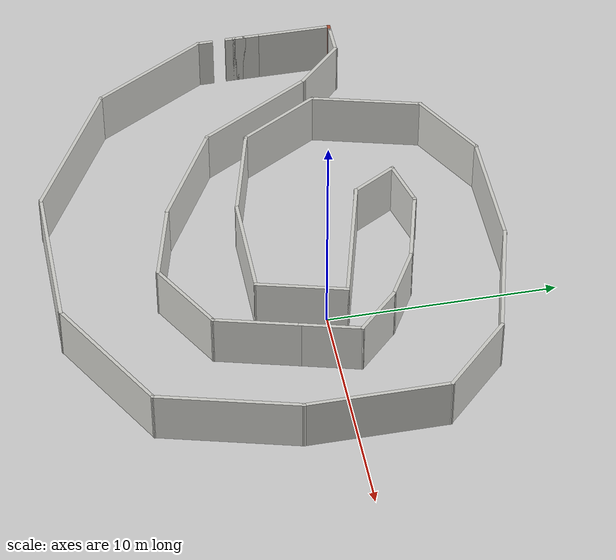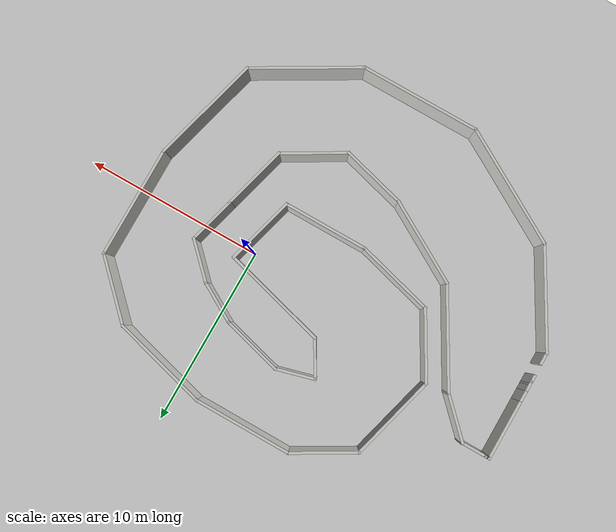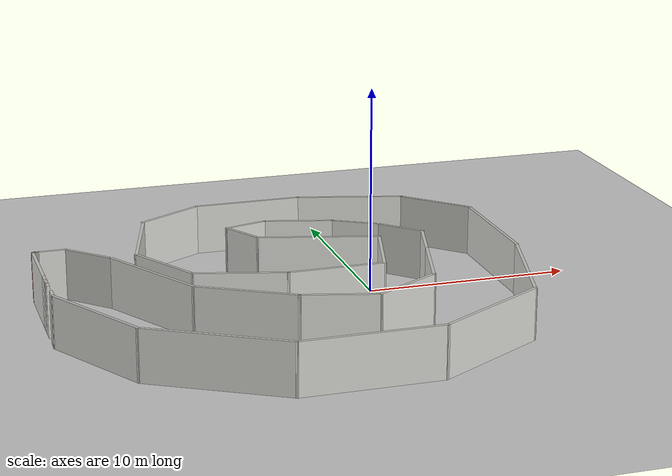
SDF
<sdf version="1.7">
 <world name="default">
  <light name="sun" type="directional">
   <pose>0 0 10 0 -0 0</pose>
   <diffuse>0.8 0.8 0.8 1</diffuse>
   <specular>0.2 0.2 0.2 1</specular>
   <attenuation>
    <range>1000</range>
    <constant>0.9</constant>
    <linear>0.01</linear>
    <quadratic>0.001</quadratic>
   </attenuation>
   <direction>-0.5 0.1 -0.9</direction>
   <spot><inner_angle>0</inner_angle><outer_angle>0</outer_angle><falloff>0</falloff></spot>
  </light>
  <model name="ground_plane">
   <static>1</static>
   <link name="link">
    <collision name="collision">
     <geometry><plane><normal>0 0 1</normal><size>100 100</size></plane></geometry>
     <surface>
      <contact><collide_bitmask>65535</collide_bitmask></contact>
      <friction><ode><mu>100</mu><mu2>50</mu2></ode></friction>
     </surface>
    </collision>
    <visual name="visual">
     <cast_shadows>0</cast_shadows>
     <geometry><plane><normal>0 0 1</normal><size>100 100</size></plane></geometry>
     <material>
      <script><uri>file://media/materials/scripts/gazebo.material</uri><name>Gazebo/Grey</name></script>
     </material>
    </visual>
   </link>
  </model>
  <gravity>0 0 -9.8</gravity>
  <magnetic_field>6e-06 2.3e-05 -4.2e-05</magnetic_field>
  <atmosphere type="adiabatic"/>
  <physics type="ode">
   <max_step_size>0.001</max_step_size>
   <real_time_factor>1</real_time_factor>
   <real_time_update_rate>1000</real_time_update_rate>
  </physics>
  <scene><ambient>0.4 0.4 0.4 1</ambient><background>0.7 0.7 0.7 1</background><shadows>1</shadows></scene>
  <spherical_coordinates>
   <surface_model>EARTH_WGS84</surface_model>
   <latitude_deg>0</latitude_deg>
   <longitude_deg>0</longitude_deg>
   <elevation>0</elevation>
   <heading_deg>0</heading_deg>
  </spherical_coordinates>
  <model name="spiral-shaped-room-TheFinalBoss">
   <pose>-4.5322 -1.60971 0 0 -0 0</pose>
   <link name="Wall_15">
    <collision name="Wall_15_Collision">
     <geometry><box><size>0.75 0.15 2.5</size></box></geometry>
     <pose>0 0 1.25 0 -0 0</pose>
    </collision>
    <visual name="Wall_15_Visual">
     <pose>0 0 1.25 0 -0 0</pose>
     <geometry><box><size>0.75 0.15 2.5</size></box></geometry>
     <material>
      <script><uri>file://media/materials/scripts/gazebo.material</uri><name>Gazebo/CeilingTiled</name></script>
      <ambient>0.760784 0.662745 0.627451 1</ambient>
     </material>
     <meta><layer>0</layer></meta>
    </visual>
    <pose>-11.0987 -0.999853 0 0 -0 -1.5708</pose>
   </link>
   <link name="Wall_16">
    <collision name="Wall_16_Collision">
     <geometry><box><size>5.75 0.15 2.5</size></box></geometry>
     <pose>0 0 1.25 0 -0 0</pose>
    </collision>
    <visual name="Wall_16_Visual">
     <pose>0 0 1.25 0 -0 0</pose>
     <geometry><box><size>5.75 0.15 2.5</size></box></geometry>
     <material>
      <script><uri>file://media/materials/scripts/gazebo.material</uri><name>Gazebo/CeilingTiled</name></script>
      <ambient>0.760784 0.662745 0.627451 1</ambient>
     </material>
     <meta><layer>0</layer></meta>
    </visual>
    <pose>-9.69872 -3.72472 0 0 -0 -1.0472</pose>
   </link>
   <link name="Wall_17">
    <collision name="Wall_17_Collision">
     <geometry><box><size>7 0.15 2.5</size></box></geometry>
     <pose>0 0 1.25 0 -0 0</pose>
    </collision>
    <visual name="Wall_17_Visual">
     <pose>0 0 1.25 0 -0 0</pose>
     <geometry><box><size>7 0.15 2.5</size></box></geometry>
     <material>
      <script><uri>file://media/materials/scripts/gazebo.material</uri><name>Gazebo/CeilingTiled</name></script>
      <ambient>1 1 1 1</ambient>
     </material>
     <meta><layer>0</layer></meta>
    </visual>
    <pose>-5.33258 -7.8621 0 0 -0 -0.523599</pose>
   </link>
   <link name="Wall_18">
    <collision name="Wall_18_Collision">
     <geometry><box><size>6.75 0.15 2.5</size></box></geometry>
     <pose>0 0 1.25 0 -0 0</pose>
    </collision>
    <visual name="Wall_18_Visual">
     <pose>0 0 1.25 0 -0 0</pose>
     <geometry><box><size>6.75 0.15 2.5</size></box></geometry>
     <material>
      <script><uri>file://media/materials/scripts/gazebo.material</uri><name>Gazebo/CeilingTiled</name></script>
      <ambient>0.921569 0.807843 0.615686 1</ambient>
     </material>
     <meta><layer>0</layer></meta>
    </visual>
    <pose>0.933554 -9.5746 0 0 -0 0</pose>
   </link>
   <link name="Wall_19">
    <collision name="Wall_19_Collision">
     <geometry><box><size>6.25 0.15 2.5</size></box></geometry>
     <pose>0 0 1.25 0 -0 0</pose>
    </collision>
    <visual name="Wall_19_Visual">
     <pose>0 0 1.25 0 -0 0</pose>
     <geometry><box><size>6.25 0.15 2.5</size></box></geometry>
     <material>
      <script><uri>file://media/materials/scripts/gazebo.material</uri><name>Gazebo/CeilingTiled</name></script>
      <ambient>0.921569 0.807843 0.615686 1</ambient>
     </material>
     <meta><layer>0</layer></meta>
    </visual>
    <pose>6.87493 -8.0496 0 0 -0 0.523599</pose>
   </link>
   <link name="Wall_20">
    <collision name="Wall_20_Collision">
     <geometry><box><size>6.25 0.15 2.5</size></box></geometry>
     <pose>0 0 1.25 0 -0 0</pose>
    </collision>
    <visual name="Wall_20_Visual">
     <pose>0 0 1.25 0 -0 0</pose>
     <geometry><box><size>6.25 0.15 2.5</size></box></geometry>
     <material>
      <script><uri>file://media/materials/scripts/gazebo.material</uri><name>Gazebo/CeilingTiled</name></script>
      <ambient>1 0.764706 0.305882 1</ambient>
     </material>
     <meta><layer>0</layer></meta>
    </visual>
    <pose>10.3057 -3.57852 0 0 -0 1.309</pose>
   </link>
   <link name="Wall_21">
    <collision name="Wall_21_Collision">
     <geometry><box><size>6.25 0.15 2.5</size></box></geometry>
     <pose>0 0 1.25 0 -0 0</pose>
    </collision>
    <visual name="Wall_21_Visual">
     <pose>0 0 1.25 0 -0 0</pose>
     <geometry><box><size>6.25 0.15 2.5</size></box></geometry>
     <material>
      <script><uri>file://media/materials/scripts/gazebo.material</uri><name>Gazebo/CeilingTiled</name></script>
      <ambient>1 0.764706 0.305882 1</ambient>
     </material>
     <meta><layer>0</layer></meta>
    </visual>
    <pose>11.0951 2.41755 0 0 -0 1.5708</pose>
   </link>
   <link name="Wall_22">
    <collision name="Wall_22_Collision">
     <geometry><box><size>4 0.15 2.5</size></box></geometry>
     <pose>0 0 1.25 0 -0 0</pose>
    </collision>
    <visual name="Wall_22_Visual">
     <pose>0 0 1.25 0 -0 0</pose>
     <geometry><box><size>4 0.15 2.5</size></box></geometry>
     <material>
      <script><uri>file://media/materials/scripts/gazebo.material</uri><name>Gazebo/CeilingTiled</name></script>
      <ambient>1 0.764706 0.305882 1</ambient>
     </material>
     <meta><layer>0</layer></meta>
    </visual>
    <pose>9.73392 6.82873 0 0 -0 2.35619</pose>
   </link>
   <link name="Wall_23">
    <collision name="Wall_23_Collision">
     <geometry><box><size>5.5 0.15 2.5</size></box></geometry>
     <pose>0 0 1.25 0 -0 0</pose>
    </collision>
    <visual name="Wall_23_Visual">
     <pose>0 0 1.25 0 -0 0</pose>
     <geometry><box><size>5.5 0.15 2.5</size></box></geometry>
     <material>
      <script><uri>file://media/materials/scripts/gazebo.material</uri><name>Gazebo/CeilingTiled</name></script>
      <ambient>1 0.764706 0.305882 1</ambient>
     </material>
     <meta><layer>0</layer></meta>
    </visual>
    <pose>5.78889 8.88226 0 0 -0 2.87979</pose>
   </link>
   <link name="Wall_24">
    <collision name="Wall_24_Collision">
     <geometry><box><size>5.5 0.15 2.5</size></box></geometry>
     <pose>0 0 1.25 0 -0 0</pose>
    </collision>
    <visual name="Wall_24_Visual">
     <pose>0 0 1.25 0 -0 0</pose>
     <geometry><box><size>5.5 0.15 2.5</size></box></geometry>
     <material>
      <script><uri>file://media/materials/scripts/gazebo.material</uri><name>Gazebo/CeilingTiled</name></script>
      <ambient>0.996078 0.47451 0.0196078 1</ambient>
     </material>
     <meta><layer>0</layer></meta>
    </visual>
    <pose>0.530041 9.5746 0 0 -0 3.14159</pose>
   </link>
   <link name="Wall_25">
    <collision name="Wall_25_Collision">
     <geometry><box><size>3.75 0.15 2.5</size></box></geometry>
     <pose>0 0 1.25 0 -0 0</pose>
    </collision>
    <visual name="Wall_25_Visual">
     <pose>0 0 1.25 0 -0 0</pose>
     <geometry><box><size>3.75 0.15 2.5</size></box></geometry>
     <material>
      <script><uri>file://media/materials/scripts/gazebo.material</uri><name>Gazebo/CeilingTiled</name></script>
      <ambient>0.996078 0.47451 0.0196078 1</ambient>
     </material>
     <meta><layer>0</layer></meta>
    </visual>
    <pose>-3.70381 8.6746 0 0 -0 -2.61799</pose>
   </link>
   <link name="Wall_26">
    <collision name="Wall_26_Collision">
     <geometry><box><size>5 0.15 2.5</size></box></geometry>
     <pose>0 0 1.25 0 -0 0</pose>
    </collision>
    <visual name="Wall_26_Visual">
     <pose>0 0 1.25 0 -0 0</pose>
     <geometry><box><size>5 0.15 2.5</size></box></geometry>
     <material>
      <script><uri>file://media/materials/scripts/gazebo.material</uri><name>Gazebo/CeilingTiled</name></script>
      <ambient>0.996078 0.47451 0.0196078 1</ambient>
     </material>
     <meta><layer>0</layer></meta>
    </visual>
    <pose>-5.89029 5.43222 0 0 -0 -1.8326</pose>
   </link>
   <link name="Wall_27">
    <collision name="Wall_27_Collision">
     <geometry><box><size>4 0.15 2.5</size></box></geometry>
     <pose>0 0 1.25 0 -0 0</pose>
    </collision>
    <visual name="Wall_27_Visual">
     <pose>0 0 1.25 0 -0 0</pose>
     <geometry><box><size>4 0.15 2.5</size></box></geometry>
     <material>
      <script><uri>file://media/materials/scripts/gazebo.material</uri><name>Gazebo/CeilingTiled</name></script>
      <ambient>0.996078 0.47451 0.0196078 1</ambient>
     </material>
     <meta><layer>0</layer></meta>
    </visual>
    <pose>-5.55542 1.42276 0 0 -0 -1.0472</pose>
   </link>
   <link name="Wall_28">
    <collision name="Wall_28_Collision">
     <geometry><box><size>4.5 0.15 2.5</size></box></geometry>
     <pose>0 0 1.25 0 -0 0</pose>
    </collision>
    <visual name="Wall_28_Visual">
     <pose>0 0 1.25 0 -0 0</pose>
     <geometry><box><size>4.5 0.15 2.5</size></box></geometry>
     <material>
      <script><uri>file://media/materials/scripts/gazebo.material</uri><name>Gazebo/CeilingTiled</name></script>
      <ambient>0.996078 0.47451 0.0196078 1</ambient>
     </material>
     <meta><layer>0</layer></meta>
    </visual>
    <pose>-2.49204 -0.807274 0 0 -0 -0.261799</pose>
   </link>
   <link name="Wall_29">
    <collision name="Wall_29_Collision">
     <geometry><box><size>4.75 0.15 2.5</size></box></geometry>
     <pose>0 0 1.25 0 -0 0</pose>
    </collision>
    <visual name="Wall_29_Visual">
     <pose>0 0 1.25 0 -0 0</pose>
     <geometry><box><size>4.75 0.15 2.5</size></box></geometry>
     <material>
      <script><uri>file://media/materials/scripts/gazebo.material</uri><name>Gazebo/CeilingTiled</name></script>
      <ambient>0.996078 0.47451 0.0196078 1</ambient>
     </material>
     <meta><layer>0</layer></meta>
    </visual>
    <pose>1.90885 -1.3702 0 0 -0 0</pose>
   </link>
   <link name="Wall_30">
    <collision name="Wall_30_Collision">
     <geometry><box><size>4 0.15 2.5</size></box></geometry>
     <pose>0 0 1.25 0 -0 0</pose>
    </collision>
    <visual name="Wall_30_Visual">
     <pose>0 0 1.25 0 -0 0</pose>
     <geometry><box><size>4 0.15 2.5</size></box></geometry>
     <material>
      <script><uri>file://media/materials/scripts/gazebo.material</uri><name>Gazebo/CeilingTiled</name></script>
      <ambient>0.996078 0.47451 0.0196078 1</ambient>
     </material>
     <meta><layer>0</layer></meta>
    </visual>
    <pose>4.70708 0.489202 0 0 -0 1.309</pose>
   </link>
   <link name="Wall_31">
    <collision name="Wall_31_Collision">
     <geometry><box><size>6 0.15 2.5</size></box></geometry>
     <pose>0 0 1.25 0 -0 0</pose>
    </collision>
    <visual name="Wall_31_Visual">
     <pose>0 0 1.25 0 -0 0</pose>
     <geometry><box><size>6 0.15 2.5</size></box></geometry>
     <material>
      <script><uri>file://media/materials/scripts/gazebo.material</uri><name>Gazebo/CeilingTiled</name></script>
      <ambient>0.996078 0.47451 0.0196078 1</ambient>
     </material>
     <meta><layer>0</layer></meta>
    </visual>
    <pose>2.37997 3.10566 0 0 -0 2.87979</pose>
   </link>
   <link name="Wall_32">
    <collision name="Wall_32_Collision">
     <geometry><box><size>2.25 0.15 2.5</size></box></geometry>
     <pose>0 0 1.25 0 -0 0</pose>
    </collision>
    <visual name="Wall_32_Visual">
     <pose>0 0 1.25 0 -0 0</pose>
     <geometry><box><size>2.25 0.15 2.5</size></box></geometry>
     <material>
      <script><uri>file://media/materials/scripts/gazebo.material</uri><name>Gazebo/CeilingTiled</name></script>
      <ambient>0.996078 0.47451 0.0196078 1</ambient>
     </material>
     <meta><layer>0</layer></meta>
    </visual>
    <pose>-0.970359 4.77203 0 0 -0 2.0944</pose>
   </link>
   <link name="Wall_33">
    <collision name="Wall_33_Collision">
     <geometry><box><size>2.25 0.15 2.5</size></box></geometry>
     <pose>0 0 1.25 0 -0 0</pose>
    </collision>
    <visual name="Wall_33_Visual">
     <pose>0 0 1.25 0 -0 0</pose>
     <geometry><box><size>2.25 0.15 2.5</size></box></geometry>
     <material>
      <script><uri>file://media/materials/scripts/gazebo.material</uri><name>Gazebo/CeilingTiled</name></script>
      <ambient>0.996078 0.47451 0.0196078 1</ambient>
     </material>
     <meta><layer>0</layer></meta>
    </visual>
    <pose>-0.481136 5.95311 0 0 -0 0.261799</pose>
   </link>
   <link name="Wall_34">
    <collision name="Wall_34_Collision">
     <geometry><box><size>3.5 0.15 2.5</size></box></geometry>
     <pose>0 0 1.25 0 -0 0</pose>
    </collision>
    <visual name="Wall_34_Visual">
     <pose>0 0 1.25 0 -0 0</pose>
     <geometry><box><size>3.5 0.15 2.5</size></box></geometry>
     <material>
      <script><uri>file://media/materials/scripts/gazebo.material</uri><name>Gazebo/CeilingTiled</name></script>
      <ambient>0.996078 0.47451 0.0196078 1</ambient>
     </material>
     <meta><layer>0</layer></meta>
    </visual>
    <pose>2.15101 5.79135 0 0 -0 -0.261799</pose>
   </link>
   <link name="Wall_35">
    <collision name="Wall_35_Collision">
     <geometry><box><size>2.5 0.15 2.5</size></box></geometry>
     <pose>0 0 1.25 0 -0 0</pose>
    </collision>
    <visual name="Wall_35_Visual">
     <pose>0 0 1.25 0 -0 0</pose>
     <geometry><box><size>2.5 0.15 2.5</size></box></geometry>
     <material>
      <script><uri>file://media/materials/scripts/gazebo.material</uri><name>Gazebo/CeilingTiled</name></script>
      <ambient>0.996078 0.47451 0.0196078 1</ambient>
     </material>
     <meta><layer>0</layer></meta>
    </visual>
    <pose>4.78652 4.77033 0 0 -0 -0.523599</pose>
   </link>
   <link name="Wall_36">
    <collision name="Wall_36_Collision">
     <geometry><box><size>2.5 0.15 2.5</size></box></geometry>
     <pose>0 0 1.25 0 -0 0</pose>
    </collision>
    <visual name="Wall_36_Visual">
     <pose>0 0 1.25 0 -0 0</pose>
     <geometry><box><size>2.5 0.15 2.5</size></box></geometry>
     <material>
      <script><uri>file://media/materials/scripts/gazebo.material</uri><name>Gazebo/CeilingTiled</name></script>
      <ambient>1 0.764706 0.305882 1</ambient>
     </material>
     <meta><layer>0</layer></meta>
    </visual>
    <pose>6.63495 3.35198 0 0 -0 -0.785398</pose>
   </link>
   <link name="Wall_37">
    <collision name="Wall_37_Collision">
     <geometry><box><size>2.75 0.15 2.5</size></box></geometry>
     <pose>0 0 1.25 0 -0 0</pose>
    </collision>
    <visual name="Wall_37_Visual">
     <pose>0 0 1.25 0 -0 0</pose>
     <geometry><box><size>2.75 0.15 2.5</size></box></geometry>
     <material>
      <script><uri>file://media/materials/scripts/gazebo.material</uri><name>Gazebo/CeilingTiled</name></script>
      <ambient>1 0.764706 0.305882 1</ambient>
     </material>
     <meta><layer>0</layer></meta>
    </visual>
    <pose>7.12933 1.26543 0 0 -0 -1.8326</pose>
   </link>
   <link name="Wall_38">
    <collision name="Wall_38_Collision">
     <geometry><box><size>3.75 0.15 2.5</size></box></geometry>
     <pose>0 0 1.25 0 -0 0</pose>
    </collision>
    <visual name="Wall_38_Visual">
     <pose>0 0 1.25 0 -0 0</pose>
     <geometry><box><size>3.75 0.15 2.5</size></box></geometry>
     <material>
      <script><uri>file://media/materials/scripts/gazebo.material</uri><name>Gazebo/CeilingTiled</name></script>
      <ambient>1 0.764706 0.305882 1</ambient>
     </material>
     <meta><layer>0</layer></meta>
    </visual>
    <pose>6.32699 -1.72894 0 0 -0 -1.8326</pose>
   </link>
   <link name="Wall_39">
    <collision name="Wall_39_Collision">
     <geometry><box><size>3.75 0.15 2.5</size></box></geometry>
     <pose>0 0 1.25 0 -0 0</pose>
    </collision>
    <visual name="Wall_39_Visual">
     <pose>0 0 1.25 0 -0 0</pose>
     <geometry><box><size>3.75 0.15 2.5</size></box></geometry>
     <material>
      <script><uri>file://media/materials/scripts/gazebo.material</uri><name>Gazebo/CeilingTiled</name></script>
      <ambient>0.921569 0.807843 0.615686 1</ambient>
     </material>
     <meta><layer>0</layer></meta>
    </visual>
    <pose>4.30227 -4.36761 0 0 -0 -2.61799</pose>
   </link>
   <link name="Wall_40">
    <collision name="Wall_40_Collision">
     <geometry><box><size>3.75 0.15 2.5</size></box></geometry>
     <pose>0 0 1.25 0 -0 0</pose>
    </collision>
    <visual name="Wall_40_Visual">
     <pose>0 0 1.25 0 -0 0</pose>
     <geometry><box><size>3.75 0.15 2.5</size></box></geometry>
     <material>
      <script><uri>file://media/materials/scripts/gazebo.material</uri><name>Gazebo/CeilingTiled</name></script>
      <ambient>0.921569 0.807843 0.615686 1</ambient>
     </material>
     <meta><layer>0</layer></meta>
    </visual>
    <pose>1.00476 -4.80174 0 0 -0 2.87979</pose>
   </link>
   <link name="Wall_41">
    <collision name="Wall_41_Collision">
     <geometry><box><size>5 0.15 2.5</size></box></geometry>
     <pose>0 0 1.25 0 -0 0</pose>
    </collision>
    <visual name="Wall_41_Visual">
     <pose>0 0 1.25 0 -0 0</pose>
     <geometry><box><size>5 0.15 2.5</size></box></geometry>
     <material>
      <script><uri>file://media/materials/scripts/gazebo.material</uri><name>Gazebo/CeilingTiled</name></script>
      <ambient>1 1 1 1</ambient>
     </material>
     <meta><layer>0</layer></meta>
    </visual>
    <pose>-2.83402 -3.12336 0 0 -0 2.61799</pose>
   </link>
   <link name="Wall_42">
    <collision name="Wall_42_Collision">
     <geometry><box><size>5.75 0.15 2.5</size></box></geometry>
     <pose>0 0 1.25 0 -0 0</pose>
    </collision>
    <visual name="Wall_42_Visual">
     <pose>0 0 1.25 0 -0 0</pose>
     <geometry><box><size>5.75 0.15 2.5</size></box></geometry>
     <material>
      <script><uri>file://media/materials/scripts/gazebo.material</uri><name>Gazebo/CeilingTiled</name></script>
      <ambient>1 1 1 1</ambient>
     </material>
     <meta><layer>0</layer></meta>
    </visual>
    <pose>-6.33413 0.514009 0 0 -0 2.0944</pose>
   </link>
   <link name="Wall_43">
    <collision name="Wall_43_Collision">
     <geometry><box><size>2.75 0.15 2.5</size></box></geometry>
     <pose>0 0 1.25 0 -0 0</pose>
    </collision>
    <visual name="Wall_43_Visual">
     <pose>0 0 1.25 0 -0 0</pose>
     <geometry><box><size>2.75 0.15 2.5</size></box></geometry>
     <material>
      <script><uri>file://media/materials/scripts/gazebo.material</uri><name>Gazebo/CeilingTiled</name></script>
      <ambient>0.760784 0.662745 0.627451 1</ambient>
     </material>
     <meta><layer>0</layer></meta>
    </visual>
    <pose>-8.65337 3.85812 0 0 -0 2.35619</pose>
   </link>
   <link name="Wall_44">
    <collision name="Wall_44_Collision">
     <geometry><box><size>1.5 0.15 2.5</size></box></geometry>
     <pose>0 0 1.25 0 -0 0</pose>
    </collision>
    <visual name="Wall_44_Visual">
     <pose>0 0 1.25 0 -0 0</pose>
     <geometry><box><size>1.5 0.15 2.5</size></box></geometry>
     <material>
      <script><uri>file://media/materials/scripts/gazebo.material</uri><name>Gazebo/CeilingTiled</name></script>
      <ambient>0.760784 0.662745 0.627451 1</ambient>
     </material>
     <meta><layer>0</layer></meta>
    </visual>
    <pose>-10.2476 4.77736 0 0 -0 3.14159</pose>
   </link>
   <link name="Wall_45">
    <collision name="Wall_45_Collision">
     <geometry><box><size>0.25 0.15 2.5</size></box></geometry>
     <pose>0 0 1.25 0 -0 0</pose>
    </collision>
    <visual name="Wall_45_Visual">
     <pose>0 0 1.25 0 -0 0</pose>
     <geometry><box><size>0.25 0.15 2.5</size></box></geometry>
     <material>
      <script><uri>file://media/materials/scripts/gazebo.material</uri><name>Gazebo/Grey</name></script>
      <ambient>1 1 1 1</ambient>
     </material>
     <meta><layer>0</layer></meta>
    </visual>
    <pose>-10.9726 4.77736 0 0 -0 3.14159</pose>
   </link>
   <link name="Wall_46">
    <collision name="Wall_46_Collision">
     <geometry><box><size>0.25 0.15 2.5</size></box></geometry>
     <pose>0 0 1.25 0 -0 0</pose>
    </collision>
    <visual name="Wall_46_Visual">
     <pose>0 0 1.25 0 -0 0</pose>
     <geometry><box><size>0.25 0.15 2.5</size></box></geometry>
     <material>
      <script><uri>file://media/materials/scripts/gazebo.material</uri><name>Gazebo/Bricks</name></script>
      <ambient>1 1 1 1</ambient>
     </material>
     <meta><layer>0</layer></meta>
    </visual>
    <pose>-11.0726 4.77736 0 0 -0 3.14159</pose>
   </link>
   <link name="Wall_47">
    <collision name="Wall_47_Collision">
     <geometry><box><size>3.5 0.15 2.5</size></box></geometry>
     <pose>0 0 1.25 0 -0 0</pose>
    </collision>
    <visual name="Wall_47_Visual">
     <pose>0 0 1.25 0 -0 0</pose>
     <geometry><box><size>3.5 0.15 2.5</size></box></geometry>
     <material>
      <script><uri>file://media/materials/scripts/gazebo.material</uri><name>Gazebo/CeilingTiled</name></script>
      <ambient>0.760784 0.662745 0.627451 1</ambient>
     </material>
     <meta><layer>0</layer></meta>
    </visual>
    <pose>-11.1226 3.10236 0 0 -0 -1.5708</pose>
   </link>
   <link name="Wall_48">
    <collision name="Wall_48_Collision">
     <geometry><box><size>0.75 0.15 2.5</size></box></geometry>
     <pose>0 0 1.25 0 -0 0</pose>
    </collision>
    <visual name="Wall_48_Visual">
     <pose>0 0 1.25 0 -0 0</pose>
     <geometry><box><size>0.75 0.15 2.5</size></box></geometry>
     <material>
      <script><uri>file://media/materials/scripts/gazebo.material</uri><name>Gazebo/CeilingTiled</name></script>
      <ambient>0.760784 0.662745 0.627451 1</ambient>
     </material>
     <meta><layer>0</layer></meta>
    </visual>
    <pose>-11.1226 1.12736 0 0 -0 -1.5708</pose>
   </link>
   <link name="Wall_49">
    <collision name="Wall_49_Collision">
     <geometry><box><size>0.5 0.15 2.5</size></box></geometry>
     <pose>0 0 1.25 0 -0 0</pose>
    </collision>
    <visual name="Wall_49_Visual">
     <pose>0 0 1.25 0 -0 0</pose>
     <geometry><box><size>0.5 0.15 2.5</size></box></geometry>
     <material>
      <script><uri>file://media/materials/scripts/gazebo.material</uri><name>Gazebo/CeilingTiled</name></script>
      <ambient>0.760784 0.662745 0.627451 1</ambient>
     </material>
     <meta><layer>0</layer></meta>
    </visual>
    <pose>-11.1226 0.652357 0 0 -0 -1.5708</pose>
   </link>
   <link name="Wall_50">
    <collision name="Wall_50_Collision">
     <geometry><box><size>0.25 0.15 2.5</size></box></geometry>
     <pose>0 0 1.25 0 -0 0</pose>
    </collision>
    <visual name="Wall_50_Visual">
     <pose>0 0 1.25 0 -0 0</pose>
     <geometry><box><size>0.25 0.15 2.5</size></box></geometry>
     <material>
      <script><uri>file://media/materials/scripts/gazebo.material</uri><name>Gazebo/CeilingTiled</name></script>
      <ambient>0.760784 0.662745 0.627451 1</ambient>
     </material>
     <meta><layer>0</layer></meta>
    </visual>
    <pose>-11.1226 0.427357 0 0 -0 -1.5708</pose>
   </link>
   <link name="Wall_51">
    <collision name="Wall_51_Collision">
     <geometry><box><size>0.5 0.15 2.5</size></box></geometry>
     <pose>0 0 1.25 0 -0 0</pose>
    </collision>
    <visual name="Wall_51_Visual">
     <pose>0 0 1.25 0 -0 0</pose>
     <geometry><box><size>0.5 0.15 2.5</size></box></geometry>
     <material>
      <script><uri>file://media/materials/scripts/gazebo.material</uri><name>Gazebo/CeilingTiled</name></script>
      <ambient>0.760784 0.662745 0.627451 1</ambient>
     </material>
     <meta><layer>0</layer></meta>
    </visual>
    <pose>-11.1226 0.202357 0 0 -0 -1.5708</pose>
   </link>
   <static>1</static>
  </model>
 </world>
</sdf>
